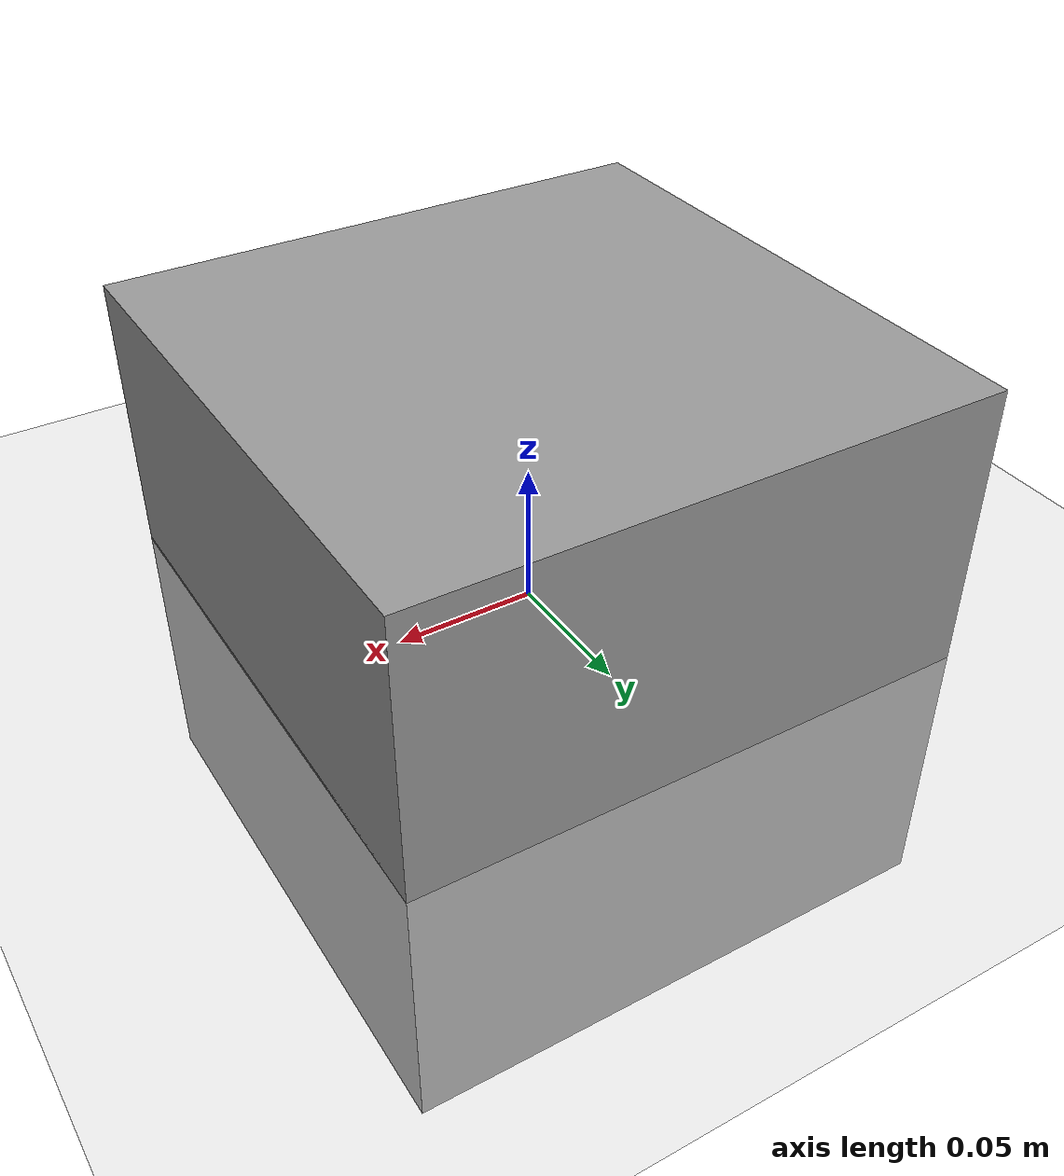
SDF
<sdf version="1.7">
 <world name="default">
  <light name="sun" type="directional">
   <pose>0 0 10 0 -0 0</pose>
   <diffuse>0.8 0.8 0.8 1</diffuse>
   <specular>0.2 0.2 0.2 1</specular>
   <attenuation>
    <range>1000</range>
    <constant>0.9</constant>
    <linear>0.01</linear>
    <quadratic>0.001</quadratic>
   </attenuation>
   <direction>-0.5 0.1 -0.9</direction>
   <spot><inner_angle>0</inner_angle><outer_angle>0</outer_angle><falloff>0</falloff></spot>
  </light>
  <model name="ground_plane">
   <static>1</static>
   <link name="link">
    <collision name="collision">
     <geometry><plane><normal>0 0 1</normal><size>100 100</size></plane></geometry>
     <surface>
      <contact><collide_bitmask>65535</collide_bitmask></contact>
      <friction><ode><mu>100</mu><mu2>50</mu2></ode></friction>
     </surface>
    </collision>
    <visual name="visual">
     <cast_shadows>0</cast_shadows>
     <geometry><plane><normal>0 0 1</normal><size>100 100</size></plane></geometry>
     <material>
      <script><uri>file://media/materials/scripts/gazebo.material</uri><name>Gazebo/Grey</name></script>
     </material>
    </visual>
   </link>
  </model>
  <gravity>0 0 -9.8</gravity>
  <magnetic_field>6e-06 2.3e-05 -4.2e-05</magnetic_field>
  <atmosphere type="adiabatic"/>
  <physics type="ode">
   <max_step_size>0.001</max_step_size>
   <real_time_factor>1</real_time_factor>
   <real_time_update_rate>1000</real_time_update_rate>
  </physics>
  <scene><ambient>0.4 0.4 0.4 1</ambient><background>0.7 0.7 0.7 1</background><shadows>1</shadows></scene>
  <spherical_coordinates>
   <surface_model>EARTH_WGS84</surface_model>
   <latitude_deg>0</latitude_deg>
   <longitude_deg>0</longitude_deg>
   <elevation>0</elevation>
   <heading_deg>0</heading_deg>
  </spherical_coordinates>
  <model name="marker20_box">
   <link name="link_20">
    <visual name="visual">
     <geometry><box><size>0.2 0.2 0.2</size></box></geometry>
     <material>
      <script><uri>file://media/materials/scripts/gazebo.material</uri><name>Gazebo/Grey</name></script>
     </material>
    </visual>
   </link>
   <link name="marker20">
    <visual name="visual">
     <geometry><box><size>0.2 0.2 0.001</size></box></geometry>
     <material>
      <script>
       <uri>model://marker20/material/scripts</uri>
       <uri>model://marker20/material/textures</uri>
       <name>Aruco/marker20</name>
      </script>
     </material>
    </visual>
   </link>
   <joint name="link_20_marker_joint" type="fixed"><parent>link_20</parent><child>marker20</child></joint>
   <static>1</static>
  </model>
  <model name="marker21_box">
   <link name="link_21">
    <visual name="visual">
     <geometry><box><size>0.2 0.2 0.2</size></box></geometry>
     <material>
      <script><uri>file://media/materials/scripts/gazebo.material</uri><name>Gazebo/Grey</name></script>
     </material>
    </visual>
   </link>
   <link name="marker21">
    <visual name="visual">
     <geometry><box><size>0.2 0.2 0.001</size></box></geometry>
     <material>
      <script>
       <uri>model://marker21/material/scripts</uri>
       <uri>model://marker21/material/textures</uri>
       <name>Aruco/marker21</name>
      </script>
     </material>
    </visual>
   </link>
   <joint name="link_21_marker_joint" type="fixed"><parent>link_21</parent><child>marker21</child></joint>
   <static>1</static>
  </model>
  <model name="marker22_box">
   <link name="link_22">
    <visual name="visual">
     <geometry><box><size>0.2 0.2 0.2</size></box></geometry>
     <material>
      <script><uri>file://media/materials/scripts/gazebo.material</uri><name>Gazebo/Grey</name></script>
     </material>
    </visual>
   </link>
   <link name="marker22">
    <visual name="visual">
     <geometry><box><size>0.2 0.2 0.001</size></box></geometry>
     <material>
      <script>
       <uri>model://marker22/material/scripts</uri>
       <uri>model://marker22/material/textures</uri>
       <name>Aruco/marker22</name>
      </script>
     </material>
    </visual>
   </link>
   <joint name="link_22_marker_joint" type="fixed"><parent>link_22</parent><child>marker22</child></joint>
   <static>1</static>
  </model>
  <model name="marker23_box">
   <link name="link_23">
    <visual name="visual">
     <geometry><box><size>0.2 0.2 0.2</size></box></geometry>
     <material>
      <script><uri>file://media/materials/scripts/gazebo.material</uri><name>Gazebo/Grey</name></script>
     </material>
    </visual>
   </link>
   <link name="marker23">
    <visual name="visual">
     <geometry><box><size>0.2 0.2 0.001</size></box></geometry>
     <material>
      <script>
       <uri>model://marker23/material/scripts</uri>
       <uri>model://marker23/material/textures</uri>
       <name>Aruco/marker23</name>
      </script>
     </material>
    </visual>
   </link>
   <joint name="link_23_marker_joint" type="fixed"><parent>link_23</parent><child>marker23</child></joint>
   <static>1</static>
  </model>
  <model name="marker24_box">
   <link name="link_24">
    <visual name="visual">
     <geometry><box><size>0.2 0.2 0.2</size></box></geometry>
     <material>
      <script><uri>file://media/materials/scripts/gazebo.material</uri><name>Gazebo/Grey</name></script>
     </material>
    </visual>
   </link>
   <link name="marker24">
    <visual name="visual">
     <geometry><box><size>0.2 0.2 0.001</size></box></geometry>
     <material>
      <script>
       <uri>model://marker24/material/scripts</uri>
       <uri>model://marker24/material/textures</uri>
       <name>Aruco/marker24</name>
      </script>
     </material>
    </visual>
   </link>
   <joint name="link_24_marker_joint" type="fixed"><parent>link_24</parent><child>marker24</child></joint>
   <static>1</static>
  </model>
 </world>
</sdf>
